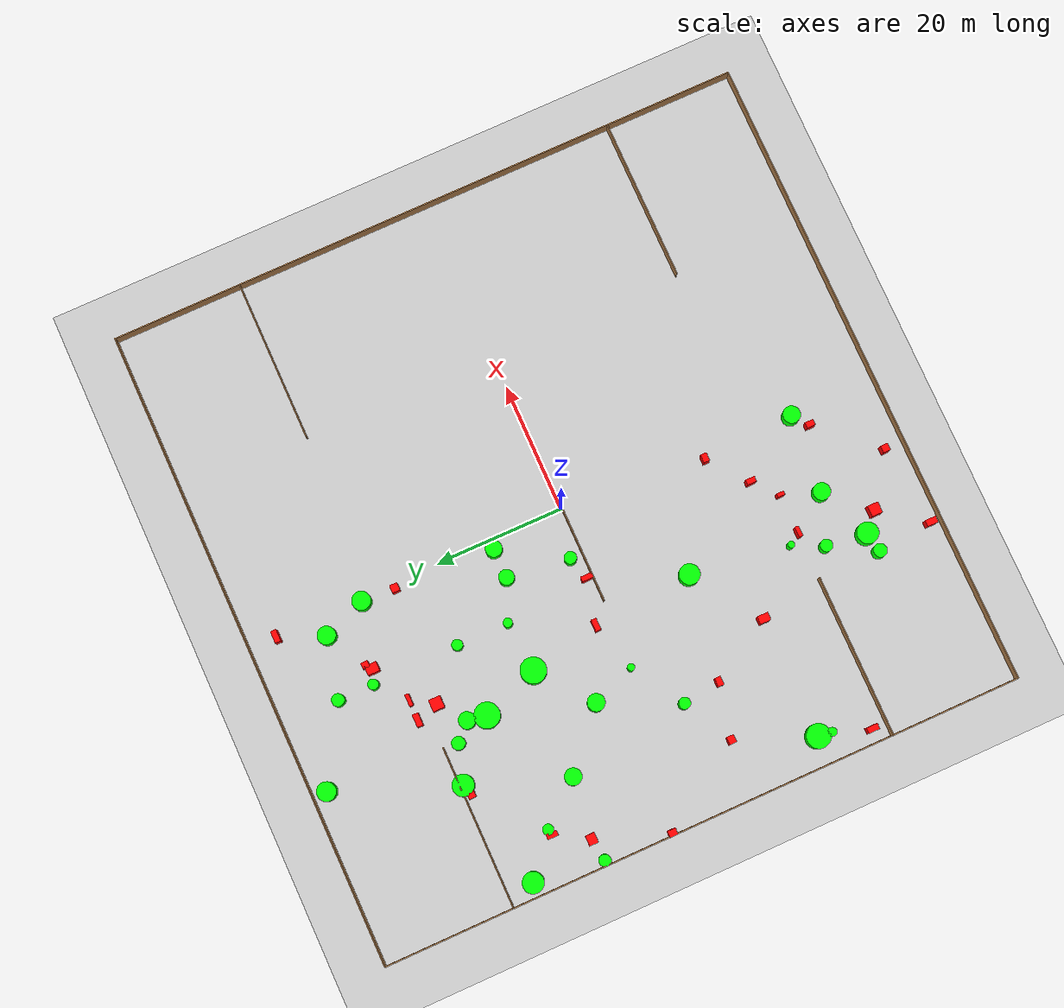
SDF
<sdf version="1.7">
 <world name="default">
  <model name="ground_plane">
   <static>1</static>
   <link name="link">
    <collision name="collision">
     <geometry><plane><normal>0 0 1</normal><size>100 100</size></plane></geometry>
     <surface>
      <contact><collide_bitmask>65535</collide_bitmask></contact>
      <friction><ode><mu>100</mu><mu2>50</mu2></ode></friction>
     </surface>
    </collision>
    <visual name="visual">
     <cast_shadows>0</cast_shadows>
     <geometry><plane><normal>0 0 1</normal><size>100 100</size></plane></geometry>
     <material>
      <script><uri>file://media/materials/scripts/gazebo.material</uri><name>Gazebo/Grey</name></script>
     </material>
    </visual>
   </link>
  </model>
  <model name="my_base_walls">
   <link name="Wall_0">
    <collision name="Wall_0_Collision">
     <geometry><box><size>100.15 0.15 2.5</size></box></geometry>
     <pose>0 0 1.25 0 -0 0</pose>
    </collision>
    <visual name="Wall_0_Visual">
     <pose>0 0 1.25 0 -0 0</pose>
     <geometry><box><size>100.15 0.15 2.5</size></box></geometry>
     <material>
      <script><uri>file://media/materials/scripts/gazebo.material</uri><name>Gazebo/Wood</name></script>
      <ambient>1 1 1 1</ambient>
     </material>
     <meta><layer>0</layer></meta>
    </visual>
    <pose>0 -50 0 0 -0 0</pose>
   </link>
   <link name="Wall_10">
    <collision name="Wall_10_Collision">
     <geometry><box><size>25.15 0.15 2.5</size></box></geometry>
     <pose>0 0 1.25 0 -0 0</pose>
    </collision>
    <visual name="Wall_10_Visual">
     <pose>0 0 1.25 0 -0 0</pose>
     <geometry><box><size>25.15 0.15 2.5</size></box></geometry>
     <material>
      <script><uri>file://media/materials/scripts/gazebo.material</uri><name>Gazebo/Wood</name></script>
      <ambient>1 1 1 1</ambient>
     </material>
     <meta><layer>0</layer></meta>
    </visual>
    <pose>37.5 30 0 0 -0 0</pose>
   </link>
   <link name="Wall_12">
    <collision name="Wall_12_Collision">
     <geometry><box><size>25.15 0.15 2.5</size></box></geometry>
     <pose>0 0 1.25 0 -0 0</pose>
    </collision>
    <visual name="Wall_12_Visual">
     <pose>0 0 1.25 0 -0 0</pose>
     <geometry><box><size>25.15 0.15 2.5</size></box></geometry>
     <material>
      <script><uri>file://media/materials/scripts/gazebo.material</uri><name>Gazebo/Wood</name></script>
      <ambient>1 1 1 1</ambient>
     </material>
     <meta><layer>0</layer></meta>
    </visual>
    <pose>-37.5 -30 0 0 -0 0</pose>
   </link>
   <link name="Wall_14">
    <collision name="Wall_14_Collision">
     <geometry><box><size>25.15 0.15 2.5</size></box></geometry>
     <pose>0 0 1.25 0 -0 0</pose>
    </collision>
    <visual name="Wall_14_Visual">
     <pose>0 0 1.25 0 -0 0</pose>
     <geometry><box><size>25.15 0.15 2.5</size></box></geometry>
     <material>
      <script><uri>file://media/materials/scripts/gazebo.material</uri><name>Gazebo/Wood</name></script>
      <ambient>1 1 1 1</ambient>
     </material>
     <meta><layer>0</layer></meta>
    </visual>
    <pose>37.5 -30 0 0 -0 0</pose>
   </link>
   <link name="Wall_16">
    <collision name="Wall_16_Collision">
     <geometry><box><size>30.15 0.15 2.5</size></box></geometry>
     <pose>0 0 1.25 0 -0 0</pose>
    </collision>
    <visual name="Wall_16_Visual">
     <pose>0 0 1.25 0 -0 0</pose>
     <geometry><box><size>30.15 0.15 2.5</size></box></geometry>
     <material>
      <script><uri>file://media/materials/scripts/gazebo.material</uri><name>Gazebo/Wood</name></script>
      <ambient>1 1 1 1</ambient>
     </material>
     <meta><layer>0</layer></meta>
    </visual>
    <pose>0 0 0 0 -0 3.14159</pose>
   </link>
   <link name="Wall_2">
    <collision name="Wall_2_Collision">
     <geometry><box><size>100.15 0.15 2.5</size></box></geometry>
     <pose>0 0 1.25 0 -0 0</pose>
    </collision>
    <visual name="Wall_2_Visual">
     <pose>0 0 1.25 0 -0 0</pose>
     <geometry><box><size>100.15 0.15 2.5</size></box></geometry>
     <material>
      <script><uri>file://media/materials/scripts/gazebo.material</uri><name>Gazebo/Wood</name></script>
      <ambient>1 1 1 1</ambient>
     </material>
     <meta><layer>0</layer></meta>
    </visual>
    <pose>0 50 0 0 -0 3.14159</pose>
   </link>
   <link name="Wall_4">
    <collision name="Wall_4_Collision">
     <geometry><box><size>100.15 0.15 2.5</size></box></geometry>
     <pose>0 0 1.25 0 -0 0</pose>
    </collision>
    <visual name="Wall_4_Visual">
     <pose>0 0 1.25 0 -0 0</pose>
     <geometry><box><size>100.15 0.15 2.5</size></box></geometry>
     <material>
      <script><uri>file://media/materials/scripts/gazebo.material</uri><name>Gazebo/Wood</name></script>
      <ambient>1 1 1 1</ambient>
     </material>
     <meta><layer>0</layer></meta>
    </visual>
    <pose>50 0 0 0 -0 -1.5708</pose>
   </link>
   <link name="Wall_6">
    <collision name="Wall_6_Collision">
     <geometry><box><size>100.15 0.15 2.5</size></box></geometry>
     <pose>0 0 1.25 0 -0 0</pose>
    </collision>
    <visual name="Wall_6_Visual">
     <pose>0 0 1.25 0 -0 0</pose>
     <geometry><box><size>100.15 0.15 2.5</size></box></geometry>
     <material>
      <script><uri>file://media/materials/scripts/gazebo.material</uri><name>Gazebo/Wood</name></script>
      <ambient>1 1 1 1</ambient>
     </material>
     <meta><layer>0</layer></meta>
    </visual>
    <pose>-50 0 0 0 -0 1.5708</pose>
   </link>
   <link name="Wall_8">
    <collision name="Wall_8_Collision">
     <geometry><box><size>25.15 0.15 2.5</size></box></geometry>
     <pose>0 0 1.25 0 -0 0</pose>
    </collision>
    <visual name="Wall_8_Visual">
     <pose>0 0 1.25 0 -0 0</pose>
     <geometry><box><size>25.15 0.15 2.5</size></box></geometry>
     <material>
      <script><uri>file://media/materials/scripts/gazebo.material</uri><name>Gazebo/Wood</name></script>
      <ambient>1 1 1 1</ambient>
     </material>
     <meta><layer>0</layer></meta>
    </visual>
    <pose>-37.5 30 0 0 -0 0</pose>
   </link>
   <static>1</static>
  </model>
  <model name="cylinder2">
   <static>1</static>
   <link name="link">
    <inertial>
     <mass>1</mass>
     <inertia><ixx>0.5</ixx><ixy>0</ixy><ixz>0</ixz><iyy>0.5</iyy><iyz>0</iyz><izz>1</izz></inertia>
    </inertial>
    <collision name="collision">
     <geometry><cylinder><radius>0.702221</radius><length>2.5</length></cylinder></geometry>
    </collision>
    <visual name="visual">
     <geometry><cylinder><radius>0.702221</radius><length>2.5</length></cylinder></geometry>
     <material>
      <ambient>0 1 0 1</ambient>
      <diffuse>0 1 0 1</diffuse>
      <specular>0.1 0.1 0.1 1</specular>
      <emissive>0 0 0 0</emissive>
     </material>
    </visual>
   </link>
   <pose>-12.3186 14.1068 1.25 0 -0 0</pose>
  </model>
  <model name="cylinder4">
   <static>1</static>
   <link name="link">
    <inertial>
     <mass>1</mass>
     <inertia><ixx>0.5</ixx><ixy>0</ixy><ixz>0</ixz><iyy>0.5</iyy><iyz>0</iyz><izz>1</izz></inertia>
    </inertial>
    <collision name="collision">
     <geometry><cylinder><radius>1.61484</radius><length>2.5</length></cylinder></geometry>
    </collision>
    <visual name="visual">
     <geometry><cylinder><radius>1.61484</radius><length>2.5</length></cylinder></geometry>
     <material>
      <ambient>0 1 0 1</ambient>
      <diffuse>0 1 0 1</diffuse>
      <specular>0.1 0.1 0.1 1</specular>
      <emissive>0 0 0 0</emissive>
     </material>
    </visual>
   </link>
   <pose>-47.8223 25.95 1.25 0 -0 0</pose>
  </model>
  <model name="cylinder5">
   <static>1</static>
   <link name="link">
    <inertial>
     <mass>1</mass>
     <inertia><ixx>0.5</ixx><ixy>0</ixy><ixz>0</ixz><iyy>0.5</iyy><iyz>0</iyz><izz>1</izz></inertia>
    </inertial>
    <collision name="collision">
     <geometry><cylinder><radius>1.2666</radius><length>2.5</length></cylinder></geometry>
    </collision>
    <visual name="visual">
     <geometry><cylinder><radius>1.2666</radius><length>2.5</length></cylinder></geometry>
     <material>
      <ambient>0 1 0 1</ambient>
      <diffuse>0 1 0 1</diffuse>
      <specular>0.1 0.1 0.1 1</specular>
      <emissive>0 0 0 0</emissive>
     </material>
    </visual>
   </link>
   <pose>-1.58055 11.573 1.25 0 -0 0</pose>
  </model>
  <model name="cylinder8">
   <static>1</static>
   <link name="link">
    <inertial>
     <mass>1</mass>
     <inertia><ixx>0.5</ixx><ixy>0</ixy><ixz>0</ixz><iyy>0.5</iyy><iyz>0</iyz><izz>1</izz></inertia>
    </inertial>
    <collision name="collision">
     <geometry><cylinder><radius>1.33044</radius><length>2.5</length></cylinder></geometry>
    </collision>
    <visual name="visual">
     <geometry><cylinder><radius>1.33044</radius><length>2.5</length></cylinder></geometry>
     <material>
      <ambient>0 1 0 1</ambient>
      <diffuse>0 1 0 1</diffuse>
      <specular>0.1 0.1 0.1 1</specular>
      <emissive>0 0 0 0</emissive>
     </material>
    </visual>
   </link>
   <pose>-13.5744 -35.6998 1.25 0 -0 0</pose>
  </model>
  <model name="cylinder9">
   <static>1</static>
   <link name="link">
    <inertial>
     <mass>1</mass>
     <inertia><ixx>0.5</ixx><ixy>0</ixy><ixz>0</ixz><iyy>0.5</iyy><iyz>0</iyz><izz>1</izz></inertia>
    </inertial>
    <collision name="collision">
     <geometry><cylinder><radius>1.64942</radius><length>2.5</length></cylinder></geometry>
    </collision>
    <visual name="visual">
     <geometry><cylinder><radius>1.64942</radius><length>2.5</length></cylinder></geometry>
     <material>
      <ambient>0 1 0 1</ambient>
      <diffuse>0 1 0 1</diffuse>
      <specular>0.1 0.1 0.1 1</specular>
      <emissive>0 0 0 0</emissive>
     </material>
    </visual>
   </link>
   <pose>-21.8863 -39.2255 1.25 0 -0 0</pose>
  </model>
  <model name="cylinder11">
   <static>1</static>
   <link name="link">
    <inertial>
     <mass>1</mass>
     <inertia><ixx>0.5</ixx><ixy>0</ixy><ixz>0</ixz><iyy>0.5</iyy><iyz>0</iyz><izz>1</izz></inertia>
    </inertial>
    <collision name="collision">
     <geometry><cylinder><radius>1.95467</radius><length>2.5</length></cylinder></geometry>
    </collision>
    <visual name="visual">
     <geometry><cylinder><radius>1.95467</radius><length>2.5</length></cylinder></geometry>
     <material>
      <ambient>0 1 0 1</ambient>
      <diffuse>0 1 0 1</diffuse>
      <specular>0.1 0.1 0.1 1</specular>
      <emissive>0 0 0 0</emissive>
     </material>
    </visual>
   </link>
   <pose>-23.3365 22.2974 1.25 0 -0 0</pose>
  </model>
  <model name="cylinder14">
   <static>1</static>
   <link name="link">
    <inertial>
     <mass>1</mass>
     <inertia><ixx>0.5</ixx><ixy>0</ixy><ixz>0</ixz><iyy>0.5</iyy><iyz>0</iyz><izz>1</izz></inertia>
    </inertial>
    <collision name="collision">
     <geometry><cylinder><radius>1.02696</radius><length>2.5</length></cylinder></geometry>
    </collision>
    <visual name="visual">
     <geometry><cylinder><radius>1.02696</radius><length>2.5</length></cylinder></geometry>
     <material>
      <ambient>0 1 0 1</ambient>
      <diffuse>0 1 0 1</diffuse>
      <specular>0.1 0.1 0.1 1</specular>
      <emissive>0 0 0 0</emissive>
     </material>
    </visual>
   </link>
   <pose>-25.3086 27.6901 1.25 0 -0 0</pose>
  </model>
  <model name="cylinder15">
   <static>1</static>
   <link name="link">
    <inertial>
     <mass>1</mass>
     <inertia><ixx>0.5</ixx><ixy>0</ixy><ixz>0</ixz><iyy>0.5</iyy><iyz>0</iyz><izz>1</izz></inertia>
    </inertial>
    <collision name="collision">
     <geometry><cylinder><radius>1.97465</radius><length>2.5</length></cylinder></geometry>
    </collision>
    <visual name="visual">
     <geometry><cylinder><radius>1.97465</radius><length>2.5</length></cylinder></geometry>
     <material>
      <ambient>0 1 0 1</ambient>
      <diffuse>0 1 0 1</diffuse>
      <specular>0.1 0.1 0.1 1</specular>
      <emissive>0 0 0 0</emissive>
     </material>
    </visual>
   </link>
   <pose>-20.164 13.5504 1.25 0 -0 0</pose>
  </model>
  <model name="cylinder16">
   <static>1</static>
   <link name="link">
    <inertial>
     <mass>1</mass>
     <inertia><ixx>0.5</ixx><ixy>0</ixy><ixz>0</ixz><iyy>0.5</iyy><iyz>0</iyz><izz>1</izz></inertia>
    </inertial>
    <collision name="collision">
     <geometry><cylinder><radius>0.948958</radius><length>2.5</length></cylinder></geometry>
    </collision>
    <visual name="visual">
     <geometry><cylinder><radius>0.948958</radius><length>2.5</length></cylinder></geometry>
     <material>
      <ambient>0 1 0 1</ambient>
      <diffuse>0 1 0 1</diffuse>
      <specular>0.1 0.1 0.1 1</specular>
      <emissive>0 0 0 0</emissive>
     </material>
    </visual>
   </link>
   <pose>-21.0962 -32.9243 1.25 0 -0 0</pose>
  </model>
  <model name="cylinder18">
   <static>1</static>
   <link name="link">
    <inertial>
     <mass>1</mass>
     <inertia><ixx>0.5</ixx><ixy>0</ixy><ixz>0</ixz><iyy>0.5</iyy><iyz>0</iyz><izz>1</izz></inertia>
    </inertial>
    <collision name="collision">
     <geometry><cylinder><radius>0.571479</radius><length>2.5</length></cylinder></geometry>
    </collision>
    <visual name="visual">
     <geometry><cylinder><radius>0.571479</radius><length>2.5</length></cylinder></geometry>
     <material>
      <ambient>0 1 0 1</ambient>
      <diffuse>0 1 0 1</diffuse>
      <specular>0.1 0.1 0.1 1</specular>
      <emissive>0 0 0 0</emissive>
     </material>
    </visual>
   </link>
   <pose>-25.548 0.445331 1.25 0 -0 0</pose>
  </model>
  <model name="cylinder19">
   <static>1</static>
   <link name="link">
    <inertial>
     <mass>1</mass>
     <inertia><ixx>0.5</ixx><ixy>0</ixy><ixz>0</ixz><iyy>0.5</iyy><iyz>0</iyz><izz>1</izz></inertia>
    </inertial>
    <collision name="collision">
     <geometry><cylinder><radius>1.04105</radius><length>2.5</length></cylinder></geometry>
    </collision>
    <visual name="visual">
     <geometry><cylinder><radius>1.04105</radius><length>2.5</length></cylinder></geometry>
     <material>
      <ambient>0 1 0 1</ambient>
      <diffuse>0 1 0 1</diffuse>
      <specular>0.1 0.1 0.1 1</specular>
      <emissive>0 0 0 0</emissive>
     </material>
    </visual>
   </link>
   <pose>-24.9636 -39.7891 1.25 0 -0 0</pose>
  </model>
  <model name="cylinder20">
   <static>1</static>
   <link name="link">
    <inertial>
     <mass>1</mass>
     <inertia><ixx>0.5</ixx><ixy>0</ixy><ixz>0</ixz><iyy>0.5</iyy><iyz>0</iyz><izz>1</izz></inertia>
    </inertial>
    <collision name="collision">
     <geometry><cylinder><radius>1.33759</radius><length>2.5</length></cylinder></geometry>
    </collision>
    <visual name="visual">
     <geometry><cylinder><radius>1.33759</radius><length>2.5</length></cylinder></geometry>
     <material>
      <ambient>0 1 0 1</ambient>
      <diffuse>0 1 0 1</diffuse>
      <specular>0.1 0.1 0.1 1</specular>
      <emissive>0 0 0 0</emissive>
     </material>
    </visual>
   </link>
   <pose>-28.1159 7.15874 1.25 0 -0 0</pose>
  </model>
  <model name="cylinder24">
   <static>1</static>
   <link name="link">
    <inertial>
     <mass>1</mass>
     <inertia><ixx>0.5</ixx><ixy>0</ixy><ixz>0</ixz><iyy>0.5</iyy><iyz>0</iyz><izz>1</izz></inertia>
    </inertial>
    <collision name="collision">
     <geometry><cylinder><radius>0.809136</radius><length>2.5</length></cylinder></geometry>
    </collision>
    <visual name="visual">
     <geometry><cylinder><radius>0.809136</radius><length>2.5</length></cylinder></geometry>
     <material>
      <ambient>0 1 0 1</ambient>
      <diffuse>0 1 0 1</diffuse>
      <specular>0.1 0.1 0.1 1</specular>
      <emissive>0 0 0 0</emissive>
     </material>
    </visual>
   </link>
   <pose>-12.4933 35.5216 1.25 0 -0 0</pose>
  </model>
  <model name="cylinder28">
   <static>1</static>
   <link name="link">
    <inertial>
     <mass>1</mass>
     <inertia><ixx>0.5</ixx><ixy>0</ixy><ixz>0</ixz><iyy>0.5</iyy><iyz>0</iyz><izz>1</izz></inertia>
    </inertial>
    <collision name="collision">
     <geometry><cylinder><radius>1.57902</radius><length>2.5</length></cylinder></geometry>
    </collision>
    <visual name="visual">
     <geometry><cylinder><radius>1.57902</radius><length>2.5</length></cylinder></geometry>
     <material>
      <ambient>0 1 0 1</ambient>
      <diffuse>0 1 0 1</diffuse>
      <specular>0.1 0.1 0.1 1</specular>
      <emissive>0 0 0 0</emissive>
     </material>
    </visual>
   </link>
   <pose>-16.72 -12.9216 1.25 0 -0 0</pose>
  </model>
  <model name="cylinder30">
   <static>1</static>
   <link name="link">
    <inertial>
     <mass>1</mass>
     <inertia><ixx>0.5</ixx><ixy>0</ixy><ixz>0</ixz><iyy>0.5</iyy><iyz>0</iyz><izz>1</izz></inertia>
    </inertial>
    <collision name="collision">
     <geometry><cylinder><radius>1.84923</radius><length>2.5</length></cylinder></geometry>
    </collision>
    <visual name="visual">
     <geometry><cylinder><radius>1.84923</radius><length>2.5</length></cylinder></geometry>
     <material>
      <ambient>0 1 0 1</ambient>
      <diffuse>0 1 0 1</diffuse>
      <specular>0.1 0.1 0.1 1</specular>
      <emissive>0 0 0 0</emissive>
     </material>
    </visual>
   </link>
   <pose>-45.6889 -20.1189 1.25 0 -0 0</pose>
  </model>
  <model name="cylinder31">
   <static>1</static>
   <link name="link">
    <inertial>
     <mass>1</mass>
     <inertia><ixx>0.5</ixx><ixy>0</ixy><ixz>0</ixz><iyy>0.5</iyy><iyz>0</iyz><izz>1</izz></inertia>
    </inertial>
    <collision name="collision">
     <geometry><cylinder><radius>1.42699</radius><length>2.5</length></cylinder></geometry>
    </collision>
    <visual name="visual">
     <geometry><cylinder><radius>1.42699</radius><length>2.5</length></cylinder></geometry>
     <material>
      <ambient>0 1 0 1</ambient>
      <diffuse>0 1 0 1</diffuse>
      <specular>0.1 0.1 0.1 1</specular>
      <emissive>0 0 0 0</emissive>
     </material>
    </visual>
   </link>
   <pose>-0.639291 32.2517 1.25 0 -0 0</pose>
  </model>
  <model name="cylinder32">
   <static>1</static>
   <link name="link">
    <inertial>
     <mass>1</mass>
     <inertia><ixx>0.5</ixx><ixy>0</ixy><ixz>0</ixz><iyy>0.5</iyy><iyz>0</iyz><izz>1</izz></inertia>
    </inertial>
    <collision name="collision">
     <geometry><cylinder><radius>1.38813</radius><length>2.5</length></cylinder></geometry>
    </collision>
    <visual name="visual">
     <geometry><cylinder><radius>1.38813</radius><length>2.5</length></cylinder></geometry>
     <material>
      <ambient>0 1 0 1</ambient>
      <diffuse>0 1 0 1</diffuse>
      <specular>0.1 0.1 0.1 1</specular>
      <emissive>0 0 0 0</emissive>
     </material>
    </visual>
   </link>
   <pose>-3.20407 38.8674 1.25 0 -0 0</pose>
  </model>
  <model name="cylinder36">
   <static>1</static>
   <link name="link">
    <inertial>
     <mass>1</mass>
     <inertia><ixx>0.5</ixx><ixy>0</ixy><ixz>0</ixz><iyy>0.5</iyy><iyz>0</iyz><izz>1</izz></inertia>
    </inertial>
    <collision name="collision">
     <geometry><cylinder><radius>1.31027</radius><length>2.5</length></cylinder></geometry>
    </collision>
    <visual name="visual">
     <geometry><cylinder><radius>1.31027</radius><length>2.5</length></cylinder></geometry>
     <material>
      <ambient>0 1 0 1</ambient>
      <diffuse>0 1 0 1</diffuse>
      <specular>0.1 0.1 0.1 1</specular>
      <emissive>0 0 0 0</emissive>
     </material>
    </visual>
   </link>
   <pose>-36.4623 14.5622 1.25 0 -0 0</pose>
  </model>
  <model name="cylinder37">
   <static>1</static>
   <link name="link">
    <inertial>
     <mass>1</mass>
     <inertia><ixx>0.5</ixx><ixy>0</ixy><ixz>0</ixz><iyy>0.5</iyy><iyz>0</iyz><izz>1</izz></inertia>
    </inertial>
    <collision name="collision">
     <geometry><cylinder><radius>0.948377</radius><length>2.5</length></cylinder></geometry>
    </collision>
    <visual name="visual">
     <geometry><cylinder><radius>0.948377</radius><length>2.5</length></cylinder></geometry>
     <material>
      <ambient>0 1 0 1</ambient>
      <diffuse>0 1 0 1</diffuse>
      <specular>0.1 0.1 0.1 1</specular>
      <emissive>0 0 0 0</emissive>
     </material>
    </visual>
   </link>
   <pose>-7.38881 1.90817 1.25 0 -0 0</pose>
  </model>
  <model name="cylinder40">
   <static>1</static>
   <link name="link">
    <inertial>
     <mass>1</mass>
     <inertia><ixx>0.5</ixx><ixy>0</ixy><ixz>0</ixz><iyy>0.5</iyy><iyz>0</iyz><izz>1</izz></inertia>
    </inertial>
    <collision name="collision">
     <geometry><cylinder><radius>0.834806</radius><length>2.5</length></cylinder></geometry>
    </collision>
    <visual name="visual">
     <geometry><cylinder><radius>0.834806</radius><length>2.5</length></cylinder></geometry>
     <material>
      <ambient>0 1 0 1</ambient>
      <diffuse>0 1 0 1</diffuse>
      <specular>0.1 0.1 0.1 1</specular>
      <emissive>0 0 0 0</emissive>
     </material>
    </visual>
   </link>
   <pose>-12.2509 22.1219 1.25 0 -0 0</pose>
  </model>
  <model name="cylinder42">
   <static>1</static>
   <link name="link">
    <inertial>
     <mass>1</mass>
     <inertia><ixx>0.5</ixx><ixy>0</ixy><ixz>0</ixz><iyy>0.5</iyy><iyz>0</iyz><izz>1</izz></inertia>
    </inertial>
    <collision name="collision">
     <geometry><cylinder><radius>0.829113</radius><length>2.5</length></cylinder></geometry>
    </collision>
    <visual name="visual">
     <geometry><cylinder><radius>0.829113</radius><length>2.5</length></cylinder></geometry>
     <material>
      <ambient>0 1 0 1</ambient>
      <diffuse>0 1 0 1</diffuse>
      <specular>0.1 0.1 0.1 1</specular>
      <emissive>0 0 0 0</emissive>
     </material>
    </visual>
   </link>
   <pose>-41.8412 20.926 1.25 0 -0 0</pose>
  </model>
  <model name="cylinder43">
   <static>1</static>
   <link name="link">
    <inertial>
     <mass>1</mass>
     <inertia><ixx>0.5</ixx><ixy>0</ixy><ixz>0</ixz><iyy>0.5</iyy><iyz>0</iyz><izz>1</izz></inertia>
    </inertial>
    <collision name="collision">
     <geometry><cylinder><radius>1.29225</radius><length>2.5</length></cylinder></geometry>
    </collision>
    <visual name="visual">
     <geometry><cylinder><radius>1.29225</radius><length>2.5</length></cylinder></geometry>
     <material>
      <ambient>0 1 0 1</ambient>
      <diffuse>0 1 0 1</diffuse>
      <specular>0.1 0.1 0.1 1</specular>
      <emissive>0 0 0 0</emissive>
     </material>
    </visual>
   </link>
   <pose>-22.8063 25.2349 1.25 0 -0 0</pose>
  </model>
  <model name="cylinder46">
   <static>1</static>
   <link name="link">
    <inertial>
     <mass>1</mass>
     <inertia><ixx>0.5</ixx><ixy>0</ixy><ixz>0</ixz><iyy>0.5</iyy><iyz>0</iyz><izz>1</izz></inertia>
    </inertial>
    <collision name="collision">
     <geometry><cylinder><radius>1.45436</radius><length>2.5</length></cylinder></geometry>
    </collision>
    <visual name="visual">
     <geometry><cylinder><radius>1.45436</radius><length>2.5</length></cylinder></geometry>
     <material>
      <ambient>0 1 0 1</ambient>
      <diffuse>0 1 0 1</diffuse>
      <specular>0.1 0.1 0.1 1</specular>
      <emissive>0 0 0 0</emissive>
     </material>
    </visual>
   </link>
   <pose>-23.8486 47.7871 1.25 0 -0 0</pose>
  </model>
  <model name="cylinder47">
   <static>1</static>
   <link name="link">
    <inertial>
     <mass>1</mass>
     <inertia><ixx>0.5</ixx><ixy>0</ixy><ixz>0</ixz><iyy>0.5</iyy><iyz>0</iyz><izz>1</izz></inertia>
    </inertial>
    <collision name="collision">
     <geometry><cylinder><radius>0.969003</radius><length>2.5</length></cylinder></geometry>
    </collision>
    <visual name="visual">
     <geometry><cylinder><radius>0.969003</radius><length>2.5</length></cylinder></geometry>
     <material>
      <ambient>0 1 0 1</ambient>
      <diffuse>0 1 0 1</diffuse>
      <specular>0.1 0.1 0.1 1</specular>
      <emissive>0 0 0 0</emissive>
     </material>
    </visual>
   </link>
   <pose>-12.4816 41.0566 1.25 0 -0 0</pose>
  </model>
  <model name="cylinder48">
   <static>1</static>
   <link name="link">
    <inertial>
     <mass>1</mass>
     <inertia><ixx>0.5</ixx><ixy>0</ixy><ixz>0</ixz><iyy>0.5</iyy><iyz>0</iyz><izz>1</izz></inertia>
    </inertial>
    <collision name="collision">
     <geometry><cylinder><radius>1.64987</radius><length>2.5</length></cylinder></geometry>
    </collision>
    <visual name="visual">
     <geometry><cylinder><radius>1.64987</radius><length>2.5</length></cylinder></geometry>
     <material>
      <ambient>0 1 0 1</ambient>
      <diffuse>0 1 0 1</diffuse>
      <specular>0.1 0.1 0.1 1</specular>
      <emissive>0 0 0 0</emissive>
     </material>
    </visual>
   </link>
   <pose>-31.1012 29.4985 1.25 0 -0 0</pose>
  </model>
  <model name="cylinder49">
   <static>1</static>
   <link name="link">
    <inertial>
     <mass>1</mass>
     <inertia><ixx>0.5</ixx><ixy>0</ixy><ixz>0</ixz><iyy>0.5</iyy><iyz>0</iyz><izz>1</izz></inertia>
    </inertial>
    <collision name="collision">
     <geometry><cylinder><radius>0.902289</radius><length>2.5</length></cylinder></geometry>
    </collision>
    <visual name="visual">
     <geometry><cylinder><radius>0.902289</radius><length>2.5</length></cylinder></geometry>
     <material>
      <ambient>0 1 0 1</ambient>
      <diffuse>0 1 0 1</diffuse>
      <specular>0.1 0.1 0.1 1</specular>
      <emissive>0 0 0 0</emissive>
     </material>
    </visual>
   </link>
   <pose>-33.4644 -4.46645 1.25 0 -0 0</pose>
  </model>
  <model name="cylinder50">
   <static>1</static>
   <link name="link">
    <inertial>
     <mass>1</mass>
     <inertia><ixx>0.5</ixx><ixy>0</ixy><ixz>0</ixz><iyy>0.5</iyy><iyz>0</iyz><izz>1</izz></inertia>
    </inertial>
    <collision name="collision">
     <geometry><cylinder><radius>1.1804</radius><length>2.5</length></cylinder></geometry>
    </collision>
    <visual name="visual">
     <geometry><cylinder><radius>1.1804</radius><length>2.5</length></cylinder></geometry>
     <material>
      <ambient>0 1 0 1</ambient>
      <diffuse>0 1 0 1</diffuse>
      <specular>0.1 0.1 0.1 1</specular>
      <emissive>0 0 0 0</emissive>
     </material>
    </visual>
   </link>
   <pose>-6.17269 11.5724 1.25 0 -0 0</pose>
  </model>
  <model name="cylinder54">
   <static>1</static>
   <link name="link">
    <inertial>
     <mass>1</mass>
     <inertia><ixx>0.5</ixx><ixy>0</ixy><ixz>0</ixz><iyy>0.5</iyy><iyz>0</iyz><izz>1</izz></inertia>
    </inertial>
    <collision name="collision">
     <geometry><cylinder><radius>0.543402</radius><length>2.5</length></cylinder></geometry>
    </collision>
    <visual name="visual">
     <geometry><cylinder><radius>0.543402</radius><length>2.5</length></cylinder></geometry>
     <material>
      <ambient>0 1 0 1</ambient>
      <diffuse>0 1 0 1</diffuse>
      <specular>0.1 0.1 0.1 1</specular>
      <emissive>0 0 0 0</emissive>
     </material>
    </visual>
   </link>
   <pose>-18.8511 -28.2916 1.25 0 -0 0</pose>
  </model>
  <model name="cylinder58">
   <static>1</static>
   <link name="link">
    <inertial>
     <mass>1</mass>
     <inertia><ixx>0.5</ixx><ixy>0</ixy><ixz>0</ixz><iyy>0.5</iyy><iyz>0</iyz><izz>1</izz></inertia>
    </inertial>
    <collision name="collision">
     <geometry><cylinder><radius>0.681296</radius><length>2.5</length></cylinder></geometry>
    </collision>
    <visual name="visual">
     <geometry><cylinder><radius>0.681296</radius><length>2.5</length></cylinder></geometry>
     <material>
      <ambient>0 1 0 1</ambient>
      <diffuse>0 1 0 1</diffuse>
      <specular>0.1 0.1 0.1 1</specular>
      <emissive>0 0 0 0</emissive>
     </material>
    </visual>
   </link>
   <pose>-45.9335 -22.1679 1.25 0 -0 0</pose>
  </model>
  <model name="cylinder59">
   <static>1</static>
   <link name="link">
    <inertial>
     <mass>1</mass>
     <inertia><ixx>0.5</ixx><ixy>0</ixy><ixz>0</ixz><iyy>0.5</iyy><iyz>0</iyz><izz>1</izz></inertia>
    </inertial>
    <collision name="collision">
     <geometry><cylinder><radius>1.32999</radius><length>2.5</length></cylinder></geometry>
    </collision>
    <visual name="visual">
     <geometry><cylinder><radius>1.32999</radius><length>2.5</length></cylinder></geometry>
     <material>
      <ambient>0 1 0 1</ambient>
      <diffuse>0 1 0 1</diffuse>
      <specular>0.1 0.1 0.1 1</specular>
      <emissive>0 0 0 0</emissive>
     </material>
    </visual>
   </link>
   <pose>-1.41158 -36.5224 1.25 0 -0 0</pose>
  </model>
  <model name="cylinder60">
   <static>1</static>
   <link name="link">
    <inertial>
     <mass>1</mass>
     <inertia><ixx>0.5</ixx><ixy>0</ixy><ixz>0</ixz><iyy>0.5</iyy><iyz>0</iyz><izz>1</izz></inertia>
    </inertial>
    <collision name="collision">
     <geometry><cylinder><radius>0.918252</radius><length>2.5</length></cylinder></geometry>
    </collision>
    <visual name="visual">
     <geometry><cylinder><radius>0.918252</radius><length>2.5</length></cylinder></geometry>
     <material>
      <ambient>0 1 0 1</ambient>
      <diffuse>0 1 0 1</diffuse>
      <specular>0.1 0.1 0.1 1</specular>
      <emissive>0 0 0 0</emissive>
     </material>
    </visual>
   </link>
   <pose>-49.1732 15.3113 1.25 0 -0 0</pose>
  </model>
  <model name="box1">
   <static>1</static>
   <link name="link">
    <inertial>
     <mass>1</mass>
     <inertia><ixx>0.083</ixx><ixy>0</ixy><ixz>0</ixz><iyy>0.083</iyy><iyz>0</iyz><izz>0.083</izz></inertia>
    </inertial>
    <collision name="collision"><geometry><box><size>1.95724 0.91584 2.5</size></box></geometry></collision>
    <visual name="visual">
     <geometry><box><size>1.95724 0.91584 2.5</size></box></geometry>
     <material>
      <ambient>1 0 0 1</ambient>
      <diffuse>1 0 0 1</diffuse>
      <specular>0.1 0.1 0.1 1</specular>
      <emissive>0 0 0 0</emissive>
     </material>
    </visual>
   </link>
   <pose>-19.8514 31.7223 1.25 0 -0 0</pose>
  </model>
  <model name="box2">
   <static>1</static>
   <link name="link">
    <inertial>
     <mass>1</mass>
     <inertia><ixx>0.083</ixx><ixy>0</ixy><ixz>0</ixz><iyy>0.083</iyy><iyz>0</iyz><izz>0.083</izz></inertia>
    </inertial>
    <collision name="collision"><geometry><box><size>1.23732 1.70139 2.5</size></box></geometry></collision>
    <visual name="visual">
     <geometry><box><size>1.23732 1.70139 2.5</size></box></geometry>
     <material>
      <ambient>1 0 0 1</ambient>
      <diffuse>1 0 0 1</diffuse>
      <specular>0.1 0.1 0.1 1</specular>
      <emissive>0 0 0 0</emissive>
     </material>
    </visual>
   </link>
   <pose>-27.0152 -20.1085 1.25 0 -0 0</pose>
  </model>
  <model name="box3">
   <static>1</static>
   <link name="link">
    <inertial>
     <mass>1</mass>
     <inertia><ixx>0.083</ixx><ixy>0</ixy><ixz>0</ixz><iyy>0.083</iyy><iyz>0</iyz><izz>0.083</izz></inertia>
    </inertial>
    <collision name="collision"><geometry><box><size>1.19723 1.10154 2.5</size></box></geometry></collision>
    <visual name="visual">
     <geometry><box><size>1.19723 1.10154 2.5</size></box></geometry>
     <material>
      <ambient>1 0 0 1</ambient>
      <diffuse>1 0 0 1</diffuse>
      <specular>0.1 0.1 0.1 1</specular>
      <emissive>0 0 0 0</emissive>
     </material>
    </visual>
   </link>
   <pose>-41.0034 -8.43952 1.25 0 -0 0</pose>
  </model>
  <model name="box11">
   <static>1</static>
   <link name="link">
    <inertial>
     <mass>1</mass>
     <inertia><ixx>0.083</ixx><ixy>0</ixy><ixz>0</ixz><iyy>0.083</iyy><iyz>0</iyz><izz>0.083</izz></inertia>
    </inertial>
    <collision name="collision"><geometry><box><size>1.58353 1.42667 2.5</size></box></geometry></collision>
    <visual name="visual">
     <geometry><box><size>1.58353 1.42667 2.5</size></box></geometry>
     <material>
      <ambient>1 0 0 1</ambient>
      <diffuse>1 0 0 1</diffuse>
      <specular>0.1 0.1 0.1 1</specular>
      <emissive>0 0 0 0</emissive>
     </material>
    </visual>
   </link>
   <pose>-45.6709 15.7778 1.25 0 -0 0</pose>
  </model>
  <model name="box20">
   <static>1</static>
   <link name="link">
    <inertial>
     <mass>1</mass>
     <inertia><ixx>0.083</ixx><ixy>0</ixy><ixz>0</ixz><iyy>0.083</iyy><iyz>0</iyz><izz>0.083</izz></inertia>
    </inertial>
    <collision name="collision"><geometry><box><size>1.34673 0.929626 2.5</size></box></geometry></collision>
    <visual name="visual">
     <geometry><box><size>1.34673 0.929626 2.5</size></box></geometry>
     <material>
      <ambient>1 0 0 1</ambient>
      <diffuse>1 0 0 1</diffuse>
      <specular>0.1 0.1 0.1 1</specular>
      <emissive>0 0 0 0</emissive>
     </material>
    </visual>
   </link>
   <pose>-32.6757 -10.3318 1.25 0 -0 0</pose>
  </model>
  <model name="box21">
   <static>1</static>
   <link name="link">
    <inertial>
     <mass>1</mass>
     <inertia><ixx>0.083</ixx><ixy>0</ixy><ixz>0</ixz><iyy>0.083</iyy><iyz>0</iyz><izz>0.083</izz></inertia>
    </inertial>
    <collision name="collision"><geometry><box><size>1.08754 1.16832 2.5</size></box></geometry></collision>
    <visual name="visual">
     <geometry><box><size>1.08754 1.16832 2.5</size></box></geometry>
     <material>
      <ambient>1 0 0 1</ambient>
      <diffuse>1 0 0 1</diffuse>
      <specular>0.1 0.1 0.1 1</specular>
      <emissive>0 0 0 0</emissive>
     </material>
    </visual>
   </link>
   <pose>-11.5872 -46.9805 1.25 0 -0 0</pose>
  </model>
  <model name="box22">
   <static>1</static>
   <link name="link">
    <inertial>
     <mass>1</mass>
     <inertia><ixx>0.083</ixx><ixy>0</ixy><ixz>0</ixz><iyy>0.083</iyy><iyz>0</iyz><izz>0.083</izz></inertia>
    </inertial>
    <collision name="collision"><geometry><box><size>1.84393 0.879553 2.5</size></box></geometry></collision>
    <visual name="visual">
     <geometry><box><size>1.84393 0.879553 2.5</size></box></geometry>
     <material>
      <ambient>1 0 0 1</ambient>
      <diffuse>1 0 0 1</diffuse>
      <specular>0.1 0.1 0.1 1</specular>
      <emissive>0 0 0 0</emissive>
     </material>
    </visual>
   </link>
   <pose>-0.292686 45.6588 1.25 0 -0 0</pose>
  </model>
  <model name="box25">
   <static>1</static>
   <link name="link">
    <inertial>
     <mass>1</mass>
     <inertia><ixx>0.083</ixx><ixy>0</ixy><ixz>0</ixz><iyy>0.083</iyy><iyz>0</iyz><izz>0.083</izz></inertia>
    </inertial>
    <collision name="collision"><geometry><box><size>0.889104 1.74991 2.5</size></box></geometry></collision>
    <visual name="visual">
     <geometry><box><size>0.889104 1.74991 2.5</size></box></geometry>
     <material>
      <ambient>1 0 0 1</ambient>
      <diffuse>1 0 0 1</diffuse>
      <specular>0.1 0.1 0.1 1</specular>
      <emissive>0 0 0 0</emissive>
     </material>
    </visual>
   </link>
   <pose>-47.9239 -27.7399 1.25 0 -0 0</pose>
  </model>
  <model name="box27">
   <static>1</static>
   <link name="link">
    <inertial>
     <mass>1</mass>
     <inertia><ixx>0.083</ixx><ixy>0</ixy><ixz>0</ixz><iyy>0.083</iyy><iyz>0</iyz><izz>0.083</izz></inertia>
    </inertial>
    <collision name="collision"><geometry><box><size>0.973928 1.72499 2.5</size></box></geometry></collision>
    <visual name="visual">
     <geometry><box><size>0.973928 1.72499 2.5</size></box></geometry>
     <material>
      <ambient>1 0 0 1</ambient>
      <diffuse>1 0 0 1</diffuse>
      <specular>0.1 0.1 0.1 1</specular>
      <emissive>0 0 0 0</emissive>
     </material>
    </visual>
   </link>
   <pose>-24.1732 -48.4794 1.25 0 -0 0</pose>
  </model>
  <model name="box28">
   <static>1</static>
   <link name="link">
    <inertial>
     <mass>1</mass>
     <inertia><ixx>0.083</ixx><ixy>0</ixy><ixz>0</ixz><iyy>0.083</iyy><iyz>0</iyz><izz>0.083</izz></inertia>
    </inertial>
    <collision name="collision"><geometry><box><size>1.82943 1.827 2.5</size></box></geometry></collision>
    <visual name="visual">
     <geometry><box><size>1.82943 1.827 2.5</size></box></geometry>
     <material>
      <ambient>1 0 0 1</ambient>
      <diffuse>1 0 0 1</diffuse>
      <specular>0.1 0.1 0.1 1</specular>
      <emissive>0 0 0 0</emissive>
     </material>
    </visual>
   </link>
   <pose>-18.8082 28.289 1.25 0 -0 0</pose>
  </model>
  <model name="box31">
   <static>1</static>
   <link name="link">
    <inertial>
     <mass>1</mass>
     <inertia><ixx>0.083</ixx><ixy>0</ixy><ixz>0</ixz><iyy>0.083</iyy><iyz>0</iyz><izz>0.083</izz></inertia>
    </inertial>
    <collision name="collision"><geometry><box><size>1.28007 0.963023 2.5</size></box></geometry></collision>
    <visual name="visual">
     <geometry><box><size>1.28007 0.963023 2.5</size></box></geometry>
     <material>
      <ambient>1 0 0 1</ambient>
      <diffuse>1 0 0 1</diffuse>
      <specular>0.1 0.1 0.1 1</specular>
      <emissive>0 0 0 0</emissive>
     </material>
    </visual>
   </link>
   <pose>-2.02935 -22.1995 1.25 0 -0 0</pose>
  </model>
  <model name="box32">
   <static>1</static>
   <link name="link">
    <inertial>
     <mass>1</mass>
     <inertia><ixx>0.083</ixx><ixy>0</ixy><ixz>0</ixz><iyy>0.083</iyy><iyz>0</iyz><izz>0.083</izz></inertia>
    </inertial>
    <collision name="collision"><geometry><box><size>0.914594 1.06451 2.5</size></box></geometry></collision>
    <visual name="visual">
     <geometry><box><size>0.914594 1.06451 2.5</size></box></geometry>
     <material>
      <ambient>1 0 0 1</ambient>
      <diffuse>1 0 0 1</diffuse>
      <specular>0.1 0.1 0.1 1</specular>
      <emissive>0 0 0 0</emissive>
     </material>
    </visual>
   </link>
   <pose>-9.42798 35.452 1.25 0 -0 0</pose>
  </model>
  <model name="box34">
   <static>1</static>
   <link name="link">
    <inertial>
     <mass>1</mass>
     <inertia><ixx>0.083</ixx><ixy>0</ixy><ixz>0</ixz><iyy>0.083</iyy><iyz>0</iyz><izz>0.083</izz></inertia>
    </inertial>
    <collision name="collision"><geometry><box><size>1.70074 1.68865 2.5</size></box></geometry></collision>
    <visual name="visual">
     <geometry><box><size>1.70074 1.68865 2.5</size></box></geometry>
     <material>
      <ambient>1 0 0 1</ambient>
      <diffuse>1 0 0 1</diffuse>
      <specular>0.1 0.1 0.1 1</specular>
      <emissive>0 0 0 0</emissive>
     </material>
    </visual>
   </link>
   <pose>-19.1597 -41.6692 1.25 0 -0 0</pose>
  </model>
  <model name="box35">
   <static>1</static>
   <link name="link">
    <inertial>
     <mass>1</mass>
     <inertia><ixx>0.083</ixx><ixy>0</ixy><ixz>0</ixz><iyy>0.083</iyy><iyz>0</iyz><izz>0.083</izz></inertia>
    </inertial>
    <collision name="collision"><geometry><box><size>1.01083 1.28312 2.5</size></box></geometry></collision>
    <visual name="visual">
     <geometry><box><size>1.01083 1.28312 2.5</size></box></geometry>
     <material>
      <ambient>1 0 0 1</ambient>
      <diffuse>1 0 0 1</diffuse>
      <specular>0.1 0.1 0.1 1</specular>
      <emissive>0 0 0 0</emissive>
     </material>
    </visual>
   </link>
   <pose>-49.5961 4.83093 1.25 0 -0 0</pose>
  </model>
  <model name="box37">
   <static>1</static>
   <link name="link">
    <inertial>
     <mass>1</mass>
     <inertia><ixx>0.083</ixx><ixy>0</ixy><ixz>0</ixz><iyy>0.083</iyy><iyz>0</iyz><izz>0.083</izz></inertia>
    </inertial>
    <collision name="collision"><geometry><box><size>1.44847 1.86352 2.5</size></box></geometry></collision>
    <visual name="visual">
     <geometry><box><size>1.44847 1.86352 2.5</size></box></geometry>
     <material>
      <ambient>1 0 0 1</ambient>
      <diffuse>1 0 0 1</diffuse>
      <specular>0.1 0.1 0.1 1</specular>
      <emissive>0 0 0 0</emissive>
     </material>
    </visual>
   </link>
   <pose>-10.3205 34.756 1.25 0 -0 0</pose>
  </model>
  <model name="box38">
   <static>1</static>
   <link name="link">
    <inertial>
     <mass>1</mass>
     <inertia><ixx>0.083</ixx><ixy>0</ixy><ixz>0</ixz><iyy>0.083</iyy><iyz>0</iyz><izz>0.083</izz></inertia>
    </inertial>
    <collision name="collision"><geometry><box><size>1.62857 0.622196 2.5</size></box></geometry></collision>
    <visual name="visual">
     <geometry><box><size>1.62857 0.622196 2.5</size></box></geometry>
     <material>
      <ambient>1 0 0 1</ambient>
      <diffuse>1 0 0 1</diffuse>
      <specular>0.1 0.1 0.1 1</specular>
      <emissive>0 0 0 0</emissive>
     </material>
    </visual>
   </link>
   <pose>-17.5793 -30.1085 1.25 0 -0 0</pose>
  </model>
  <model name="box39">
   <static>1</static>
   <link name="link">
    <inertial>
     <mass>1</mass>
     <inertia><ixx>0.083</ixx><ixy>0</ixy><ixz>0</ixz><iyy>0.083</iyy><iyz>0</iyz><izz>0.083</izz></inertia>
    </inertial>
    <collision name="collision"><geometry><box><size>0.817698 1.47062 2.5</size></box></geometry></collision>
    <visual name="visual">
     <geometry><box><size>0.817698 1.47062 2.5</size></box></geometry>
     <material>
      <ambient>1 0 0 1</ambient>
      <diffuse>1 0 0 1</diffuse>
      <specular>0.1 0.1 0.1 1</specular>
      <emissive>0 0 0 0</emissive>
     </material>
    </visual>
   </link>
   <pose>-7.88273 -26.9036 1.25 0 -0 0</pose>
  </model>
  <model name="box48">
   <static>1</static>
   <link name="link">
    <inertial>
     <mass>1</mass>
     <inertia><ixx>0.083</ixx><ixy>0</ixy><ixz>0</ixz><iyy>0.083</iyy><iyz>0</iyz><izz>0.083</izz></inertia>
    </inertial>
    <collision name="collision"><geometry><box><size>1.82352 0.85041 2.5</size></box></geometry></collision>
    <visual name="visual">
     <geometry><box><size>1.82352 0.85041 2.5</size></box></geometry>
     <material>
      <ambient>1 0 0 1</ambient>
      <diffuse>1 0 0 1</diffuse>
      <specular>0.1 0.1 0.1 1</specular>
      <emissive>0 0 0 0</emissive>
     </material>
    </visual>
   </link>
   <pose>-17.8517 2.55684 1.25 0 -0 0</pose>
  </model>
  <model name="box49">
   <static>1</static>
   <link name="link">
    <inertial>
     <mass>1</mass>
     <inertia><ixx>0.083</ixx><ixy>0</ixy><ixz>0</ixz><iyy>0.083</iyy><iyz>0</iyz><izz>0.083</izz></inertia>
    </inertial>
    <collision name="collision"><geometry><box><size>0.83062 1.66711 2.5</size></box></geometry></collision>
    <visual name="visual">
     <geometry><box><size>0.83062 1.66711 2.5</size></box></geometry>
     <material>
      <ambient>1 0 0 1</ambient>
      <diffuse>1 0 0 1</diffuse>
      <specular>0.1 0.1 0.1 1</specular>
      <emissive>0 0 0 0</emissive>
     </material>
    </visual>
   </link>
   <pose>-42.7852 20.7291 1.25 0 -0 0</pose>
  </model>
  <model name="box50">
   <static>1</static>
   <link name="link">
    <inertial>
     <mass>1</mass>
     <inertia><ixx>0.083</ixx><ixy>0</ixy><ixz>0</ixz><iyy>0.083</iyy><iyz>0</iyz><izz>0.083</izz></inertia>
    </inertial>
    <collision name="collision"><geometry><box><size>0.777453 1.81596 2.5</size></box></geometry></collision>
    <visual name="visual">
     <geometry><box><size>0.777453 1.81596 2.5</size></box></geometry>
     <material>
      <ambient>1 0 0 1</ambient>
      <diffuse>1 0 0 1</diffuse>
      <specular>0.1 0.1 0.1 1</specular>
      <emissive>0 0 0 0</emissive>
     </material>
    </visual>
   </link>
   <pose>-10.9715 0.868315 1.25 0 -0 0</pose>
  </model>
  <model name="box51">
   <static>1</static>
   <link name="link">
    <inertial>
     <mass>1</mass>
     <inertia><ixx>0.083</ixx><ixy>0</ixy><ixz>0</ixz><iyy>0.083</iyy><iyz>0</iyz><izz>0.083</izz></inertia>
    </inertial>
    <collision name="collision"><geometry><box><size>1.22069 1.08487 2.5</size></box></geometry></collision>
    <visual name="visual">
     <geometry><box><size>1.22069 1.08487 2.5</size></box></geometry>
     <material>
      <ambient>1 0 0 1</ambient>
      <diffuse>1 0 0 1</diffuse>
      <specular>0.1 0.1 0.1 1</specular>
      <emissive>0 0 0 0</emissive>
     </material>
    </visual>
   </link>
   <pose>-32.7323 28.9649 1.25 0 -0 0</pose>
  </model>
  <model name="box52">
   <static>1</static>
   <link name="link">
    <inertial>
     <mass>1</mass>
     <inertia><ixx>0.083</ixx><ixy>0</ixy><ixz>0</ixz><iyy>0.083</iyy><iyz>0</iyz><izz>0.083</izz></inertia>
    </inertial>
    <collision name="collision"><geometry><box><size>1.83534 0.599413 2.5</size></box></geometry></collision>
    <visual name="visual">
     <geometry><box><size>1.83534 0.599413 2.5</size></box></geometry>
     <material>
      <ambient>1 0 0 1</ambient>
      <diffuse>1 0 0 1</diffuse>
      <specular>0.1 0.1 0.1 1</specular>
      <emissive>0 0 0 0</emissive>
     </material>
    </visual>
   </link>
   <pose>-16.698 31.7036 1.25 0 -0 0</pose>
  </model>
  <model name="box53">
   <static>1</static>
   <link name="link">
    <inertial>
     <mass>1</mass>
     <inertia><ixx>0.083</ixx><ixy>0</ixy><ixz>0</ixz><iyy>0.083</iyy><iyz>0</iyz><izz>0.083</izz></inertia>
    </inertial>
    <collision name="collision"><geometry><box><size>0.880704 1.33482 2.5</size></box></geometry></collision>
    <visual name="visual">
     <geometry><box><size>0.880704 1.33482 2.5</size></box></geometry>
     <material>
      <ambient>1 0 0 1</ambient>
      <diffuse>1 0 0 1</diffuse>
      <specular>0.1 0.1 0.1 1</specular>
      <emissive>0 0 0 0</emissive>
     </material>
    </visual>
   </link>
   <pose>-3.75859 -38.427 1.25 0 -0 0</pose>
  </model>
  <model name="box56">
   <static>1</static>
   <link name="link">
    <inertial>
     <mass>1</mass>
     <inertia><ixx>0.083</ixx><ixy>0</ixy><ixz>0</ixz><iyy>0.083</iyy><iyz>0</iyz><izz>0.083</izz></inertia>
    </inertial>
    <collision name="collision"><geometry><box><size>1.19379 1.21344 2.5</size></box></geometry></collision>
    <visual name="visual">
     <geometry><box><size>1.19379 1.21344 2.5</size></box></geometry>
     <material>
      <ambient>1 0 0 1</ambient>
      <diffuse>1 0 0 1</diffuse>
      <specular>0.1 0.1 0.1 1</specular>
      <emissive>0 0 0 0</emissive>
     </material>
    </visual>
   </link>
   <pose>-0.916748 27.0681 1.25 0 -0 0</pose>
  </model>
  <model name="box58">
   <static>1</static>
   <link name="link">
    <inertial>
     <mass>1</mass>
     <inertia><ixx>0.083</ixx><ixy>0</ixy><ixz>0</ixz><iyy>0.083</iyy><iyz>0</iyz><izz>0.083</izz></inertia>
    </inertial>
    <collision name="collision"><geometry><box><size>0.572749 1.16911 2.5</size></box></geometry></collision>
    <visual name="visual">
     <geometry><box><size>0.572749 1.16911 2.5</size></box></geometry>
     <material>
      <ambient>1 0 0 1</ambient>
      <diffuse>1 0 0 1</diffuse>
      <specular>0.1 0.1 0.1 1</specular>
      <emissive>0 0 0 0</emissive>
     </material>
    </visual>
   </link>
   <pose>-11.4839 -30.0448 1.25 0 -0 0</pose>
  </model>
 </world>
</sdf>
